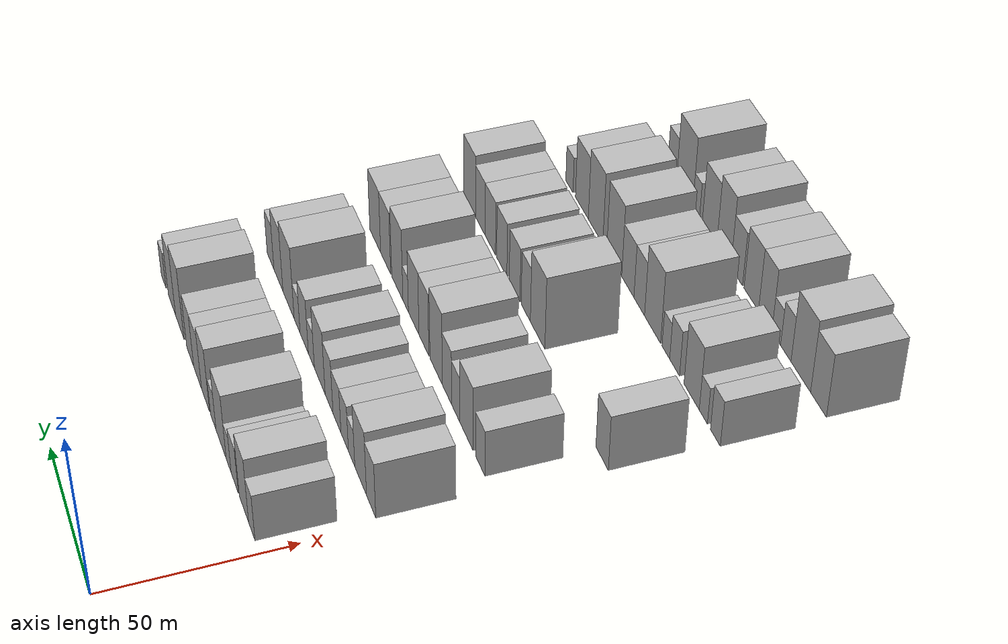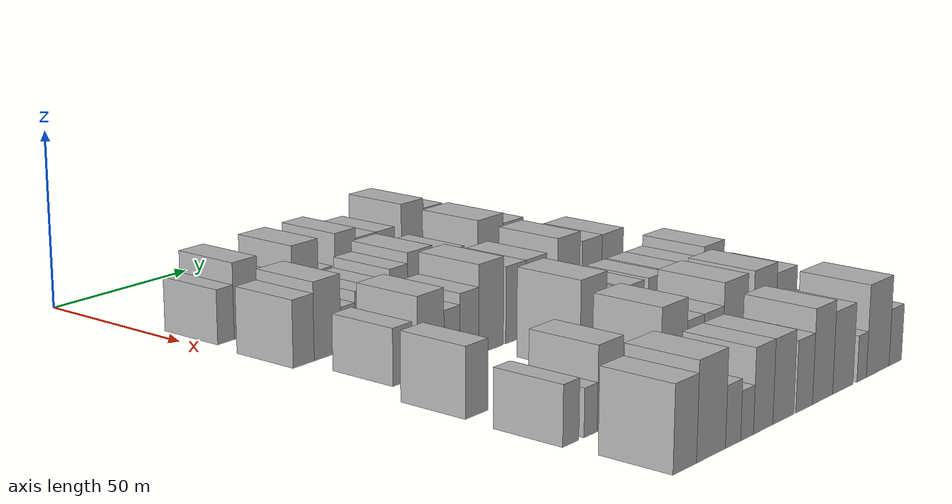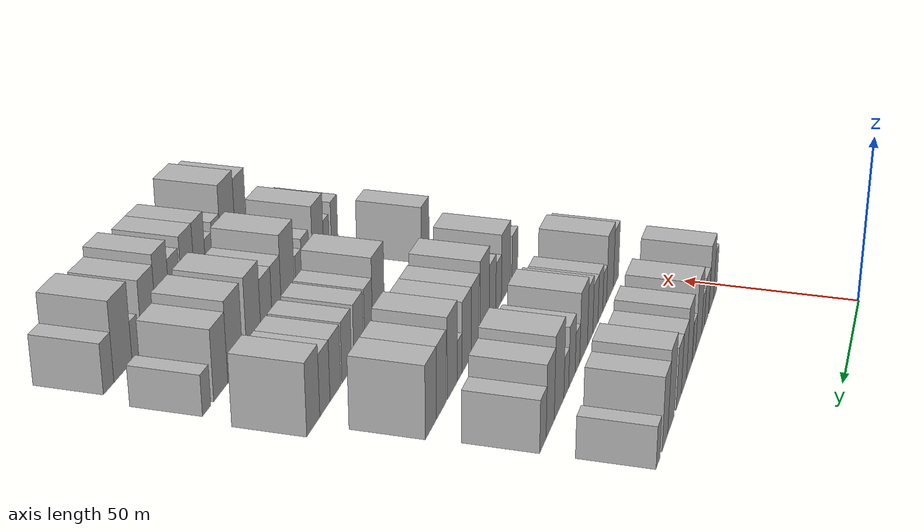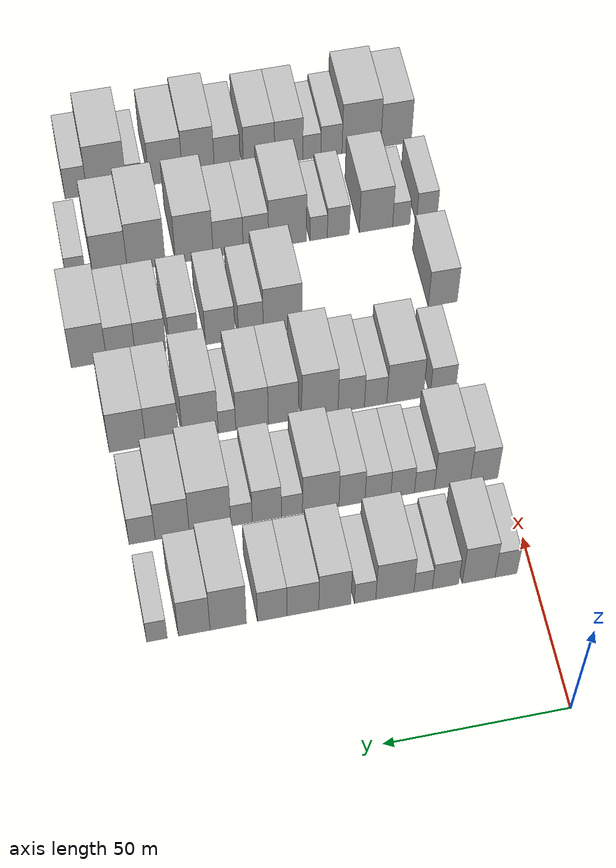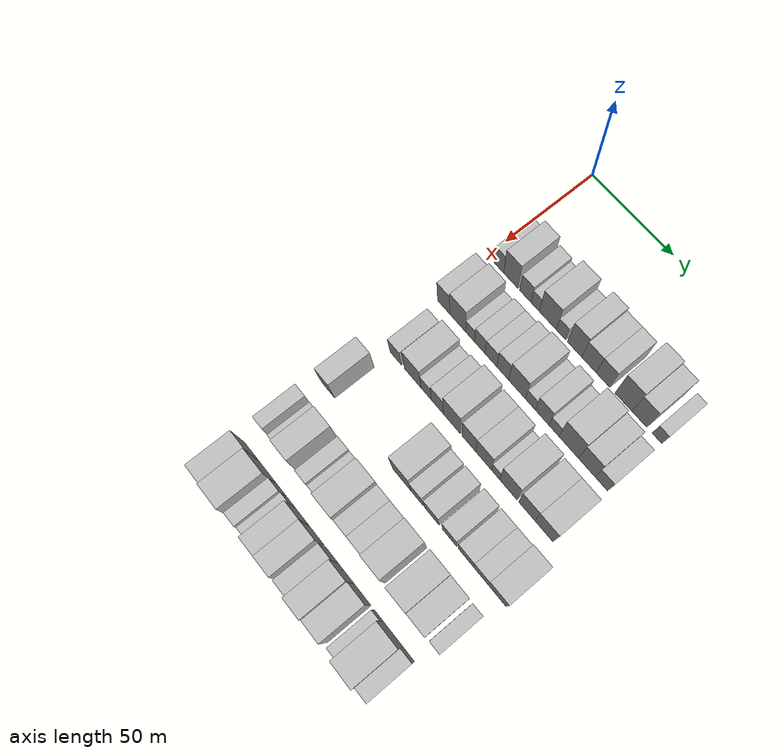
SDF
<sdf version="1.6">
 <world name="default">
  <model name="building_60">
   <static>1</static>
   <pose>50.0000 7.2807 0 0.000000 0.000000 0.000000</pose>
   <link name="link">
    <pose>0 0 7.50 0 0 0</pose>
    <collision name="collision"><geometry><box><size>20.0000 6.0589 15.0000</size></box></geometry></collision>
    <visual name="visual">
     <cast_shadows>0</cast_shadows>
     <geometry><box><size>20.0000 6.0589 15.0000</size></box></geometry>
     <material>
      <script>
       <uri>model://HANNAS_wall/materials/scripts</uri>
       <uri>model://HANNAS_wall/materials/textures</uri>
       <name>vrc/HANNAS_wall</name>
      </script>
     </material>
    </visual>
   </link>
  </model>
  <model name="building_61">
   <static>1</static>
   <pose>50.0000 14.8393 0 0.000000 0.000000 0.000000</pose>
   <link name="link">
    <pose>0 0 10.50 0 0 0</pose>
    <collision name="collision"><geometry><box><size>20.0000 9.0584 21.0000</size></box></geometry></collision>
    <visual name="visual">
     <cast_shadows>0</cast_shadows>
     <geometry><box><size>20.0000 9.0584 21.0000</size></box></geometry>
     <material>
      <script>
       <uri>model://HANNAS_wall/materials/scripts</uri>
       <uri>model://HANNAS_wall/materials/textures</uri>
       <name>vrc/HANNAS_wall</name>
      </script>
     </material>
    </visual>
   </link>
  </model>
  <model name="building_62">
   <static>1</static>
   <pose>50.0000 23.9872 0 0.000000 0.000000 0.000000</pose>
   <link name="link">
    <pose>0 0 7.50 0 0 0</pose>
    <collision name="collision"><geometry><box><size>20.0000 7.2373 15.0000</size></box></geometry></collision>
    <visual name="visual">
     <cast_shadows>0</cast_shadows>
     <geometry><box><size>20.0000 7.2373 15.0000</size></box></geometry>
     <material>
      <script>
       <uri>model://HANNAS_wall/materials/scripts</uri>
       <uri>model://HANNAS_wall/materials/textures</uri>
       <name>vrc/HANNAS_wall</name>
      </script>
     </material>
    </visual>
   </link>
  </model>
  <model name="building_63">
   <static>1</static>
   <pose>50.0000 30.1402 0 0.000000 0.000000 0.000000</pose>
   <link name="link">
    <pose>0 0 6.00 0 0 0</pose>
    <collision name="collision"><geometry><box><size>20.0000 5.0687 12.0000</size></box></geometry></collision>
    <visual name="visual">
     <cast_shadows>0</cast_shadows>
     <geometry><box><size>20.0000 5.0687 12.0000</size></box></geometry>
     <material>
      <script>
       <uri>model://HANNAS_wall/materials/scripts</uri>
       <uri>model://HANNAS_wall/materials/textures</uri>
       <name>vrc/HANNAS_wall</name>
      </script>
     </material>
    </visual>
   </link>
  </model>
  <model name="building_64">
   <static>1</static>
   <pose>50.0000 37.8830 0 0.000000 0.000000 0.000000</pose>
   <link name="link">
    <pose>0 0 10.50 0 0 0</pose>
    <collision name="collision"><geometry><box><size>20.0000 10.4169 21.0000</size></box></geometry></collision>
    <visual name="visual">
     <cast_shadows>0</cast_shadows>
     <geometry><box><size>20.0000 10.4169 21.0000</size></box></geometry>
     <material>
      <script>
       <uri>model://HANNAS_wall/materials/scripts</uri>
       <uri>model://HANNAS_wall/materials/textures</uri>
       <name>vrc/HANNAS_wall</name>
      </script>
     </material>
    </visual>
   </link>
  </model>
  <model name="building_65">
   <static>1</static>
   <pose>50.0000 45.9973 0 0.000000 0.000000 0.000000</pose>
   <link name="link">
    <pose>0 0 6.00 0 0 0</pose>
    <collision name="collision"><geometry><box><size>20.0000 5.8117 12.0000</size></box></geometry></collision>
    <visual name="visual">
     <cast_shadows>0</cast_shadows>
     <geometry><box><size>20.0000 5.8117 12.0000</size></box></geometry>
     <material>
      <script>
       <uri>model://HANNAS_wall/materials/scripts</uri>
       <uri>model://HANNAS_wall/materials/textures</uri>
       <name>vrc/HANNAS_wall</name>
      </script>
     </material>
    </visual>
   </link>
  </model>
  <model name="building_66">
   <static>1</static>
   <pose>50.0000 54.2521 0 0.000000 0.000000 0.000000</pose>
   <link name="link">
    <pose>0 0 10.50 0 0 0</pose>
    <collision name="collision"><geometry><box><size>20.0000 8.6979 21.0000</size></box></geometry></collision>
    <visual name="visual">
     <cast_shadows>0</cast_shadows>
     <geometry><box><size>20.0000 8.6979 21.0000</size></box></geometry>
     <material>
      <script>
       <uri>model://HANNAS_wall/materials/scripts</uri>
       <uri>model://HANNAS_wall/materials/textures</uri>
       <name>vrc/HANNAS_wall</name>
      </script>
     </material>
    </visual>
   </link>
  </model>
  <model name="building_67">
   <static>1</static>
   <pose>50.0000 62.9014 0 0.000000 0.000000 0.000000</pose>
   <link name="link">
    <pose>0 0 9.00 0 0 0</pose>
    <collision name="collision"><geometry><box><size>20.0000 8.6006 18.0000</size></box></geometry></collision>
    <visual name="visual">
     <cast_shadows>0</cast_shadows>
     <geometry><box><size>20.0000 8.6006 18.0000</size></box></geometry>
     <material>
      <script>
       <uri>model://HANNAS_wall/materials/scripts</uri>
       <uri>model://HANNAS_wall/materials/textures</uri>
       <name>vrc/HANNAS_wall</name>
      </script>
     </material>
    </visual>
   </link>
  </model>
  <model name="building_68">
   <static>1</static>
   <pose>50.0000 71.1912 0 0.000000 0.000000 0.000000</pose>
   <link name="link">
    <pose>0 0 9.00 0 0 0</pose>
    <collision name="collision"><geometry><box><size>20.0000 7.9790 18.0000</size></box></geometry></collision>
    <visual name="visual">
     <cast_shadows>0</cast_shadows>
     <geometry><box><size>20.0000 7.9790 18.0000</size></box></geometry>
     <material>
      <script>
       <uri>model://HANNAS_wall/materials/scripts</uri>
       <uri>model://HANNAS_wall/materials/textures</uri>
       <name>vrc/HANNAS_wall</name>
      </script>
     </material>
    </visual>
   </link>
  </model>
  <model name="building_69">
   <static>1</static>
   <pose>50.0000 83.0696 0 0.000000 0.000000 0.000000</pose>
   <link name="link">
    <pose>0 0 12.00 0 0 0</pose>
    <collision name="collision"><geometry><box><size>20.0000 9.7777 24.0000</size></box></geometry></collision>
    <visual name="visual">
     <cast_shadows>0</cast_shadows>
     <geometry><box><size>20.0000 9.7777 24.0000</size></box></geometry>
     <material>
      <script>
       <uri>model://HANNAS_wall/materials/scripts</uri>
       <uri>model://HANNAS_wall/materials/textures</uri>
       <name>vrc/HANNAS_wall</name>
      </script>
     </material>
    </visual>
   </link>
  </model>
  <model name="building_70">
   <static>1</static>
   <pose>50.0000 92.2091 0 0.000000 0.000000 0.000000</pose>
   <link name="link">
    <pose>0 0 10.50 0 0 0</pose>
    <collision name="collision"><geometry><box><size>20.0000 8.5013 21.0000</size></box></geometry></collision>
    <visual name="visual">
     <cast_shadows>0</cast_shadows>
     <geometry><box><size>20.0000 8.5013 21.0000</size></box></geometry>
     <material>
      <script>
       <uri>model://HANNAS_wall/materials/scripts</uri>
       <uri>model://HANNAS_wall/materials/textures</uri>
       <name>vrc/HANNAS_wall</name>
      </script>
     </material>
    </visual>
   </link>
  </model>
  <model name="building_71">
   <static>1</static>
   <pose>50.0000 102.2008 0 0.000000 0.000000 0.000000</pose>
   <link name="link">
    <pose>0 0 6.00 0 0 0</pose>
    <collision name="collision"><geometry><box><size>20.0000 5.4821 12.0000</size></box></geometry></collision>
    <visual name="visual">
     <cast_shadows>0</cast_shadows>
     <geometry><box><size>20.0000 5.4821 12.0000</size></box></geometry>
     <material>
      <script>
       <uri>model://HANNAS_wall/materials/scripts</uri>
       <uri>model://HANNAS_wall/materials/textures</uri>
       <name>vrc/HANNAS_wall</name>
      </script>
     </material>
    </visual>
   </link>
  </model>
  <model name="building_165">
   <static>1</static>
   <pose>79.0000 6.1927 0 0.000000 0.000000 0.000000</pose>
   <link name="link">
    <pose>0 0 9.00 0 0 0</pose>
    <collision name="collision"><geometry><box><size>20.0000 7.7935 18.0000</size></box></geometry></collision>
    <visual name="visual">
     <cast_shadows>0</cast_shadows>
     <geometry><box><size>20.0000 7.7935 18.0000</size></box></geometry>
     <material>
      <script>
       <uri>model://HANNAS_wall/materials/scripts</uri>
       <uri>model://HANNAS_wall/materials/textures</uri>
       <name>vrc/HANNAS_wall</name>
      </script>
     </material>
    </visual>
   </link>
  </model>
  <model name="building_166">
   <static>1</static>
   <pose>79.0000 15.1392 0 0.000000 0.000000 0.000000</pose>
   <link name="link">
    <pose>0 0 10.50 0 0 0</pose>
    <collision name="collision"><geometry><box><size>20.0000 10.0993 21.0000</size></box></geometry></collision>
    <visual name="visual">
     <cast_shadows>0</cast_shadows>
     <geometry><box><size>20.0000 10.0993 21.0000</size></box></geometry>
     <material>
      <script>
       <uri>model://HANNAS_wall/materials/scripts</uri>
       <uri>model://HANNAS_wall/materials/textures</uri>
       <name>vrc/HANNAS_wall</name>
      </script>
     </material>
    </visual>
   </link>
  </model>
  <model name="building_167">
   <static>1</static>
   <pose>79.0000 22.9930 0 0.000000 0.000000 0.000000</pose>
   <link name="link">
    <pose>0 0 6.00 0 0 0</pose>
    <collision name="collision"><geometry><box><size>20.0000 5.6085 12.0000</size></box></geometry></collision>
    <visual name="visual">
     <cast_shadows>0</cast_shadows>
     <geometry><box><size>20.0000 5.6085 12.0000</size></box></geometry>
     <material>
      <script>
       <uri>model://HANNAS_wall/materials/scripts</uri>
       <uri>model://HANNAS_wall/materials/textures</uri>
       <name>vrc/HANNAS_wall</name>
      </script>
     </material>
    </visual>
   </link>
  </model>
  <model name="building_168">
   <static>1</static>
   <pose>79.0000 29.1366 0 0.000000 0.000000 0.000000</pose>
   <link name="link">
    <pose>0 0 7.50 0 0 0</pose>
    <collision name="collision"><geometry><box><size>20.0000 6.6786 15.0000</size></box></geometry></collision>
    <visual name="visual">
     <cast_shadows>0</cast_shadows>
     <geometry><box><size>20.0000 6.6786 15.0000</size></box></geometry>
     <material>
      <script>
       <uri>model://HANNAS_wall/materials/scripts</uri>
       <uri>model://HANNAS_wall/materials/textures</uri>
       <name>vrc/HANNAS_wall</name>
      </script>
     </material>
    </visual>
   </link>
  </model>
  <model name="building_169">
   <static>1</static>
   <pose>79.0000 36.0788 0 0.000000 0.000000 0.000000</pose>
   <link name="link">
    <pose>0 0 7.50 0 0 0</pose>
    <collision name="collision"><geometry><box><size>20.0000 7.2059 15.0000</size></box></geometry></collision>
    <visual name="visual">
     <cast_shadows>0</cast_shadows>
     <geometry><box><size>20.0000 7.2059 15.0000</size></box></geometry>
     <material>
      <script>
       <uri>model://HANNAS_wall/materials/scripts</uri>
       <uri>model://HANNAS_wall/materials/textures</uri>
       <name>vrc/HANNAS_wall</name>
      </script>
     </material>
    </visual>
   </link>
  </model>
  <model name="building_170">
   <static>1</static>
   <pose>79.0000 43.3223 0 0.000000 0.000000 0.000000</pose>
   <link name="link">
    <pose>0 0 9.00 0 0 0</pose>
    <collision name="collision"><geometry><box><size>20.0000 7.2812 18.0000</size></box></geometry></collision>
    <visual name="visual">
     <cast_shadows>0</cast_shadows>
     <geometry><box><size>20.0000 7.2812 18.0000</size></box></geometry>
     <material>
      <script>
       <uri>model://HANNAS_wall/materials/scripts</uri>
       <uri>model://HANNAS_wall/materials/textures</uri>
       <name>vrc/HANNAS_wall</name>
      </script>
     </material>
    </visual>
   </link>
  </model>
  <model name="building_171">
   <static>1</static>
   <pose>79.0000 52.0455 0 0.000000 0.000000 0.000000</pose>
   <link name="link">
    <pose>0 0 10.50 0 0 0</pose>
    <collision name="collision"><geometry><box><size>20.0000 10.1652 21.0000</size></box></geometry></collision>
    <visual name="visual">
     <cast_shadows>0</cast_shadows>
     <geometry><box><size>20.0000 10.1652 21.0000</size></box></geometry>
     <material>
      <script>
       <uri>model://HANNAS_wall/materials/scripts</uri>
       <uri>model://HANNAS_wall/materials/textures</uri>
       <name>vrc/HANNAS_wall</name>
      </script>
     </material>
    </visual>
   </link>
  </model>
  <model name="building_172">
   <static>1</static>
   <pose>79.0000 60.0529 0 0.000000 0.000000 0.000000</pose>
   <link name="link">
    <pose>0 0 6.00 0 0 0</pose>
    <collision name="collision"><geometry><box><size>20.0000 5.8496 12.0000</size></box></geometry></collision>
    <visual name="visual">
     <cast_shadows>0</cast_shadows>
     <geometry><box><size>20.0000 5.8496 12.0000</size></box></geometry>
     <material>
      <script>
       <uri>model://HANNAS_wall/materials/scripts</uri>
       <uri>model://HANNAS_wall/materials/textures</uri>
       <name>vrc/HANNAS_wall</name>
      </script>
     </material>
    </visual>
   </link>
  </model>
  <model name="building_173">
   <static>1</static>
   <pose>79.0000 67.0197 0 0.000000 0.000000 0.000000</pose>
   <link name="link">
    <pose>0 0 9.00 0 0 0</pose>
    <collision name="collision"><geometry><box><size>20.0000 8.0840 18.0000</size></box></geometry></collision>
    <visual name="visual">
     <cast_shadows>0</cast_shadows>
     <geometry><box><size>20.0000 8.0840 18.0000</size></box></geometry>
     <material>
      <script>
       <uri>model://HANNAS_wall/materials/scripts</uri>
       <uri>model://HANNAS_wall/materials/textures</uri>
       <name>vrc/HANNAS_wall</name>
      </script>
     </material>
    </visual>
   </link>
  </model>
  <model name="building_174">
   <static>1</static>
   <pose>79.0000 74.0165 0 0.000000 0.000000 0.000000</pose>
   <link name="link">
    <pose>0 0 6.00 0 0 0</pose>
    <collision name="collision"><geometry><box><size>20.0000 5.9096 12.0000</size></box></geometry></collision>
    <visual name="visual">
     <cast_shadows>0</cast_shadows>
     <geometry><box><size>20.0000 5.9096 12.0000</size></box></geometry>
     <material>
      <script>
       <uri>model://HANNAS_wall/materials/scripts</uri>
       <uri>model://HANNAS_wall/materials/textures</uri>
       <name>vrc/HANNAS_wall</name>
      </script>
     </material>
    </visual>
   </link>
  </model>
  <model name="building_175">
   <static>1</static>
   <pose>79.0000 82.6772 0 0.000000 0.000000 0.000000</pose>
   <link name="link">
    <pose>0 0 12.00 0 0 0</pose>
    <collision name="collision"><geometry><box><size>20.0000 11.4118 24.0000</size></box></geometry></collision>
    <visual name="visual">
     <cast_shadows>0</cast_shadows>
     <geometry><box><size>20.0000 11.4118 24.0000</size></box></geometry>
     <material>
      <script>
       <uri>model://HANNAS_wall/materials/scripts</uri>
       <uri>model://HANNAS_wall/materials/textures</uri>
       <name>vrc/HANNAS_wall</name>
      </script>
     </material>
    </visual>
   </link>
  </model>
  <model name="building_176">
   <static>1</static>
   <pose>79.0000 93.0775 0 0.000000 0.000000 0.000000</pose>
   <link name="link">
    <pose>0 0 10.50 0 0 0</pose>
    <collision name="collision"><geometry><box><size>20.0000 9.3887 21.0000</size></box></geometry></collision>
    <visual name="visual">
     <cast_shadows>0</cast_shadows>
     <geometry><box><size>20.0000 9.3887 21.0000</size></box></geometry>
     <material>
      <script>
       <uri>model://HANNAS_wall/materials/scripts</uri>
       <uri>model://HANNAS_wall/materials/textures</uri>
       <name>vrc/HANNAS_wall</name>
      </script>
     </material>
    </visual>
   </link>
  </model>
  <model name="building_177">
   <static>1</static>
   <pose>79.0000 101.3603 0 0.000000 0.000000 0.000000</pose>
   <link name="link">
    <pose>0 0 7.50 0 0 0</pose>
    <collision name="collision"><geometry><box><size>20.0000 7.1768 15.0000</size></box></geometry></collision>
    <visual name="visual">
     <cast_shadows>0</cast_shadows>
     <geometry><box><size>20.0000 7.1768 15.0000</size></box></geometry>
     <material>
      <script>
       <uri>model://HANNAS_wall/materials/scripts</uri>
       <uri>model://HANNAS_wall/materials/textures</uri>
       <name>vrc/HANNAS_wall</name>
      </script>
     </material>
    </visual>
   </link>
  </model>
  <model name="building_274">
   <static>1</static>
   <pose>108.0000 10.9206 0 0.000000 0.000000 0.000000</pose>
   <link name="link">
    <pose>0 0 7.50 0 0 0</pose>
    <collision name="collision"><geometry><box><size>20.0000 7.2757 15.0000</size></box></geometry></collision>
    <visual name="visual">
     <cast_shadows>0</cast_shadows>
     <geometry><box><size>20.0000 7.2757 15.0000</size></box></geometry>
     <material>
      <script>
       <uri>model://HANNAS_wall/materials/scripts</uri>
       <uri>model://HANNAS_wall/materials/textures</uri>
       <name>vrc/HANNAS_wall</name>
      </script>
     </material>
    </visual>
   </link>
  </model>
  <model name="building_275">
   <static>1</static>
   <pose>108.0000 21.8003 0 0.000000 0.000000 0.000000</pose>
   <link name="link">
    <pose>0 0 10.50 0 0 0</pose>
    <collision name="collision"><geometry><box><size>20.0000 10.4837 21.0000</size></box></geometry></collision>
    <visual name="visual">
     <cast_shadows>0</cast_shadows>
     <geometry><box><size>20.0000 10.4837 21.0000</size></box></geometry>
     <material>
      <script>
       <uri>model://HANNAS_wall/materials/scripts</uri>
       <uri>model://HANNAS_wall/materials/textures</uri>
       <name>vrc/HANNAS_wall</name>
      </script>
     </material>
    </visual>
   </link>
  </model>
  <model name="building_276">
   <static>1</static>
   <pose>108.0000 30.2634 0 0.000000 0.000000 0.000000</pose>
   <link name="link">
    <pose>0 0 7.50 0 0 0</pose>
    <collision name="collision"><geometry><box><size>20.0000 6.4425 15.0000</size></box></geometry></collision>
    <visual name="visual">
     <cast_shadows>0</cast_shadows>
     <geometry><box><size>20.0000 6.4425 15.0000</size></box></geometry>
     <material>
      <script>
       <uri>model://HANNAS_wall/materials/scripts</uri>
       <uri>model://HANNAS_wall/materials/textures</uri>
       <name>vrc/HANNAS_wall</name>
      </script>
     </material>
    </visual>
   </link>
  </model>
  <model name="building_277">
   <static>1</static>
   <pose>108.0000 37.2650 0 0.000000 0.000000 0.000000</pose>
   <link name="link">
    <pose>0 0 9.00 0 0 0</pose>
    <collision name="collision"><geometry><box><size>20.0000 7.5607 18.0000</size></box></geometry></collision>
    <visual name="visual">
     <cast_shadows>0</cast_shadows>
     <geometry><box><size>20.0000 7.5607 18.0000</size></box></geometry>
     <material>
      <script>
       <uri>model://HANNAS_wall/materials/scripts</uri>
       <uri>model://HANNAS_wall/materials/textures</uri>
       <name>vrc/HANNAS_wall</name>
      </script>
     </material>
    </visual>
   </link>
  </model>
  <model name="building_278">
   <static>1</static>
   <pose>108.0000 46.2348 0 0.000000 0.000000 0.000000</pose>
   <link name="link">
    <pose>0 0 12.00 0 0 0</pose>
    <collision name="collision"><geometry><box><size>20.0000 10.3787 24.0000</size></box></geometry></collision>
    <visual name="visual">
     <cast_shadows>0</cast_shadows>
     <geometry><box><size>20.0000 10.3787 24.0000</size></box></geometry>
     <material>
      <script>
       <uri>model://HANNAS_wall/materials/scripts</uri>
       <uri>model://HANNAS_wall/materials/textures</uri>
       <name>vrc/HANNAS_wall</name>
      </script>
     </material>
    </visual>
   </link>
  </model>
  <model name="building_279">
   <static>1</static>
   <pose>108.0000 56.6740 0 0.000000 0.000000 0.000000</pose>
   <link name="link">
    <pose>0 0 10.50 0 0 0</pose>
    <collision name="collision"><geometry><box><size>20.0000 8.4998 21.0000</size></box></geometry></collision>
    <visual name="visual">
     <cast_shadows>0</cast_shadows>
     <geometry><box><size>20.0000 8.4998 21.0000</size></box></geometry>
     <material>
      <script>
       <uri>model://HANNAS_wall/materials/scripts</uri>
       <uri>model://HANNAS_wall/materials/textures</uri>
       <name>vrc/HANNAS_wall</name>
      </script>
     </material>
    </visual>
   </link>
  </model>
  <model name="building_280">
   <static>1</static>
   <pose>108.0000 65.5536 0 0.000000 0.000000 0.000000</pose>
   <link name="link">
    <pose>0 0 10.50 0 0 0</pose>
    <collision name="collision"><geometry><box><size>20.0000 9.2593 21.0000</size></box></geometry></collision>
    <visual name="visual">
     <cast_shadows>0</cast_shadows>
     <geometry><box><size>20.0000 9.2593 21.0000</size></box></geometry>
     <material>
      <script>
       <uri>model://HANNAS_wall/materials/scripts</uri>
       <uri>model://HANNAS_wall/materials/textures</uri>
       <name>vrc/HANNAS_wall</name>
      </script>
     </material>
    </visual>
   </link>
  </model>
  <model name="building_281">
   <static>1</static>
   <pose>108.0000 72.6393 0 0.000000 0.000000 0.000000</pose>
   <link name="link">
    <pose>0 0 6.00 0 0 0</pose>
    <collision name="collision"><geometry><box><size>20.0000 4.9122 12.0000</size></box></geometry></collision>
    <visual name="visual">
     <cast_shadows>0</cast_shadows>
     <geometry><box><size>20.0000 4.9122 12.0000</size></box></geometry>
     <material>
      <script>
       <uri>model://HANNAS_wall/materials/scripts</uri>
       <uri>model://HANNAS_wall/materials/textures</uri>
       <name>vrc/HANNAS_wall</name>
      </script>
     </material>
    </visual>
   </link>
  </model>
  <model name="building_282">
   <static>1</static>
   <pose>108.0000 80.1490 0 0.000000 0.000000 0.000000</pose>
   <link name="link">
    <pose>0 0 12.00 0 0 0</pose>
    <collision name="collision"><geometry><box><size>20.0000 10.1071 24.0000</size></box></geometry></collision>
    <visual name="visual">
     <cast_shadows>0</cast_shadows>
     <geometry><box><size>20.0000 10.1071 24.0000</size></box></geometry>
     <material>
      <script>
       <uri>model://HANNAS_wall/materials/scripts</uri>
       <uri>model://HANNAS_wall/materials/textures</uri>
       <name>vrc/HANNAS_wall</name>
      </script>
     </material>
    </visual>
   </link>
  </model>
  <model name="building_283">
   <static>1</static>
   <pose>108.0000 90.8758 0 0.000000 0.000000 0.000000</pose>
   <link name="link">
    <pose>0 0 10.50 0 0 0</pose>
    <collision name="collision"><geometry><box><size>20.0000 9.3465 21.0000</size></box></geometry></collision>
    <visual name="visual">
     <cast_shadows>0</cast_shadows>
     <geometry><box><size>20.0000 9.3465 21.0000</size></box></geometry>
     <material>
      <script>
       <uri>model://HANNAS_wall/materials/scripts</uri>
       <uri>model://HANNAS_wall/materials/textures</uri>
       <name>vrc/HANNAS_wall</name>
      </script>
     </material>
    </visual>
   </link>
  </model>
  <model name="building_284">
   <static>1</static>
   <pose>108.0000 100.6800 0 0.000000 0.000000 0.000000</pose>
   <link name="link">
    <pose>0 0 10.50 0 0 0</pose>
    <collision name="collision"><geometry><box><size>20.0000 10.2620 21.0000</size></box></geometry></collision>
    <visual name="visual">
     <cast_shadows>0</cast_shadows>
     <geometry><box><size>20.0000 10.2620 21.0000</size></box></geometry>
     <material>
      <script>
       <uri>model://HANNAS_wall/materials/scripts</uri>
       <uri>model://HANNAS_wall/materials/textures</uri>
       <name>vrc/HANNAS_wall</name>
      </script>
     </material>
    </visual>
   </link>
  </model>
  <model name="building_391">
   <static>1</static>
   <pose>137.0000 4.0208 0 0.000000 0.000000 0.000000</pose>
   <link name="link">
    <pose>0 0 9.00 0 0 0</pose>
    <collision name="collision"><geometry><box><size>20.0000 8.5534 18.0000</size></box></geometry></collision>
    <visual name="visual">
     <cast_shadows>0</cast_shadows>
     <geometry><box><size>20.0000 8.5534 18.0000</size></box></geometry>
     <material>
      <script>
       <uri>model://HANNAS_wall/materials/scripts</uri>
       <uri>model://HANNAS_wall/materials/textures</uri>
       <name>vrc/HANNAS_wall</name>
      </script>
     </material>
    </visual>
   </link>
  </model>
  <model name="building_392">
   <static>1</static>
   <pose>137.0000 51.1116 0 0.000000 0.000000 0.000000</pose>
   <link name="link">
    <pose>0 0 12.00 0 0 0</pose>
    <collision name="collision"><geometry><box><size>20.0000 11.2094 24.0000</size></box></geometry></collision>
    <visual name="visual">
     <cast_shadows>0</cast_shadows>
     <geometry><box><size>20.0000 11.2094 24.0000</size></box></geometry>
     <material>
      <script>
       <uri>model://HANNAS_wall/materials/scripts</uri>
       <uri>model://HANNAS_wall/materials/textures</uri>
       <name>vrc/HANNAS_wall</name>
      </script>
     </material>
    </visual>
   </link>
  </model>
  <model name="building_393">
   <static>1</static>
   <pose>137.0000 60.3166 0 0.000000 0.000000 0.000000</pose>
   <link name="link">
    <pose>0 0 9.00 0 0 0</pose>
    <collision name="collision"><geometry><box><size>20.0000 7.2005 18.0000</size></box></geometry></collision>
    <visual name="visual">
     <cast_shadows>0</cast_shadows>
     <geometry><box><size>20.0000 7.2005 18.0000</size></box></geometry>
     <material>
      <script>
       <uri>model://HANNAS_wall/materials/scripts</uri>
       <uri>model://HANNAS_wall/materials/textures</uri>
       <name>vrc/HANNAS_wall</name>
      </script>
     </material>
    </visual>
   </link>
  </model>
  <model name="building_394">
   <static>1</static>
   <pose>137.0000 69.2212 0 0.000000 0.000000 0.000000</pose>
   <link name="link">
    <pose>0 0 9.00 0 0 0</pose>
    <collision name="collision"><geometry><box><size>20.0000 8.6088 18.0000</size></box></geometry></collision>
    <visual name="visual">
     <cast_shadows>0</cast_shadows>
     <geometry><box><size>20.0000 8.6088 18.0000</size></box></geometry>
     <material>
      <script>
       <uri>model://HANNAS_wall/materials/scripts</uri>
       <uri>model://HANNAS_wall/materials/textures</uri>
       <name>vrc/HANNAS_wall</name>
      </script>
     </material>
    </visual>
   </link>
  </model>
  <model name="building_395">
   <static>1</static>
   <pose>137.0000 79.7200 0 0.000000 0.000000 0.000000</pose>
   <link name="link">
    <pose>0 0 9.00 0 0 0</pose>
    <collision name="collision"><geometry><box><size>20.0000 8.3886 18.0000</size></box></geometry></collision>
    <visual name="visual">
     <cast_shadows>0</cast_shadows>
     <geometry><box><size>20.0000 8.3886 18.0000</size></box></geometry>
     <material>
      <script>
       <uri>model://HANNAS_wall/materials/scripts</uri>
       <uri>model://HANNAS_wall/materials/textures</uri>
       <name>vrc/HANNAS_wall</name>
      </script>
     </material>
    </visual>
   </link>
  </model>
  <model name="building_396">
   <static>1</static>
   <pose>137.0000 89.3250 0 0.000000 0.000000 0.000000</pose>
   <link name="link">
    <pose>0 0 9.00 0 0 0</pose>
    <collision name="collision"><geometry><box><size>20.0000 8.8214 18.0000</size></box></geometry></collision>
    <visual name="visual">
     <cast_shadows>0</cast_shadows>
     <geometry><box><size>20.0000 8.8214 18.0000</size></box></geometry>
     <material>
      <script>
       <uri>model://HANNAS_wall/materials/scripts</uri>
       <uri>model://HANNAS_wall/materials/textures</uri>
       <name>vrc/HANNAS_wall</name>
      </script>
     </material>
    </visual>
   </link>
  </model>
  <model name="building_397">
   <static>1</static>
   <pose>137.0000 97.8682 0 0.000000 0.000000 0.000000</pose>
   <link name="link">
    <pose>0 0 9.00 0 0 0</pose>
    <collision name="collision"><geometry><box><size>20.0000 8.2650 18.0000</size></box></geometry></collision>
    <visual name="visual">
     <cast_shadows>0</cast_shadows>
     <geometry><box><size>20.0000 8.2650 18.0000</size></box></geometry>
     <material>
      <script>
       <uri>model://HANNAS_wall/materials/scripts</uri>
       <uri>model://HANNAS_wall/materials/textures</uri>
       <name>vrc/HANNAS_wall</name>
      </script>
     </material>
    </visual>
   </link>
  </model>
  <model name="building_398">
   <static>1</static>
   <pose>137.0000 107.1067 0 0.000000 0.000000 0.000000</pose>
   <link name="link">
    <pose>0 0 10.50 0 0 0</pose>
    <collision name="collision"><geometry><box><size>20.0000 10.2121 21.0000</size></box></geometry></collision>
    <visual name="visual">
     <cast_shadows>0</cast_shadows>
     <geometry><box><size>20.0000 10.2121 21.0000</size></box></geometry>
     <material>
      <script>
       <uri>model://HANNAS_wall/materials/scripts</uri>
       <uri>model://HANNAS_wall/materials/textures</uri>
       <name>vrc/HANNAS_wall</name>
      </script>
     </material>
    </visual>
   </link>
  </model>
  <model name="building_502">
   <static>1</static>
   <pose>166.0000 1.9831 0 0.000000 0.000000 0.000000</pose>
   <link name="link">
    <pose>0 0 7.50 0 0 0</pose>
    <collision name="collision"><geometry><box><size>20.0000 6.2096 15.0000</size></box></geometry></collision>
    <visual name="visual">
     <cast_shadows>0</cast_shadows>
     <geometry><box><size>20.0000 6.2096 15.0000</size></box></geometry>
     <material>
      <script>
       <uri>model://HANNAS_wall/materials/scripts</uri>
       <uri>model://HANNAS_wall/materials/textures</uri>
       <name>vrc/HANNAS_wall</name>
      </script>
     </material>
    </visual>
   </link>
  </model>
  <model name="building_503">
   <static>1</static>
   <pose>166.0000 9.6900 0 0.000000 0.000000 0.000000</pose>
   <link name="link">
    <pose>0 0 6.00 0 0 0</pose>
    <collision name="collision"><geometry><box><size>20.0000 5.2043 12.0000</size></box></geometry></collision>
    <visual name="visual">
     <cast_shadows>0</cast_shadows>
     <geometry><box><size>20.0000 5.2043 12.0000</size></box></geometry>
     <material>
      <script>
       <uri>model://HANNAS_wall/materials/scripts</uri>
       <uri>model://HANNAS_wall/materials/textures</uri>
       <name>vrc/HANNAS_wall</name>
      </script>
     </material>
    </visual>
   </link>
  </model>
  <model name="building_504">
   <static>1</static>
   <pose>166.0000 17.3154 0 0.000000 0.000000 0.000000</pose>
   <link name="link">
    <pose>0 0 10.50 0 0 0</pose>
    <collision name="collision"><geometry><box><size>20.0000 10.0464 21.0000</size></box></geometry></collision>
    <visual name="visual">
     <cast_shadows>0</cast_shadows>
     <geometry><box><size>20.0000 10.0464 21.0000</size></box></geometry>
     <material>
      <script>
       <uri>model://HANNAS_wall/materials/scripts</uri>
       <uri>model://HANNAS_wall/materials/textures</uri>
       <name>vrc/HANNAS_wall</name>
      </script>
     </material>
    </visual>
   </link>
  </model>
  <model name="building_505">
   <static>1</static>
   <pose>166.0000 28.6568 0 0.000000 0.000000 0.000000</pose>
   <link name="link">
    <pose>0 0 7.50 0 0 0</pose>
    <collision name="collision"><geometry><box><size>20.0000 6.6364 15.0000</size></box></geometry></collision>
    <visual name="visual">
     <cast_shadows>0</cast_shadows>
     <geometry><box><size>20.0000 6.6364 15.0000</size></box></geometry>
     <material>
      <script>
       <uri>model://HANNAS_wall/materials/scripts</uri>
       <uri>model://HANNAS_wall/materials/textures</uri>
       <name>vrc/HANNAS_wall</name>
      </script>
     </material>
    </visual>
   </link>
  </model>
  <model name="building_506">
   <static>1</static>
   <pose>166.0000 34.5924 0 0.000000 0.000000 0.000000</pose>
   <link name="link">
    <pose>0 0 6.00 0 0 0</pose>
    <collision name="collision"><geometry><box><size>20.0000 5.2347 12.0000</size></box></geometry></collision>
    <visual name="visual">
     <cast_shadows>0</cast_shadows>
     <geometry><box><size>20.0000 5.2347 12.0000</size></box></geometry>
     <material>
      <script>
       <uri>model://HANNAS_wall/materials/scripts</uri>
       <uri>model://HANNAS_wall/materials/textures</uri>
       <name>vrc/HANNAS_wall</name>
      </script>
     </material>
    </visual>
   </link>
  </model>
  <model name="building_507">
   <static>1</static>
   <pose>166.0000 43.8521 0 0.000000 0.000000 0.000000</pose>
   <link name="link">
    <pose>0 0 12.00 0 0 0</pose>
    <collision name="collision"><geometry><box><size>20.0000 11.2848 24.0000</size></box></geometry></collision>
    <visual name="visual">
     <cast_shadows>0</cast_shadows>
     <geometry><box><size>20.0000 11.2848 24.0000</size></box></geometry>
     <material>
      <script>
       <uri>model://HANNAS_wall/materials/scripts</uri>
       <uri>model://HANNAS_wall/materials/textures</uri>
       <name>vrc/HANNAS_wall</name>
      </script>
     </material>
    </visual>
   </link>
  </model>
  <model name="building_508">
   <static>1</static>
   <pose>166.0000 53.2860 0 0.000000 0.000000 0.000000</pose>
   <link name="link">
    <pose>0 0 9.00 0 0 0</pose>
    <collision name="collision"><geometry><box><size>20.0000 7.5829 18.0000</size></box></geometry></collision>
    <visual name="visual">
     <cast_shadows>0</cast_shadows>
     <geometry><box><size>20.0000 7.5829 18.0000</size></box></geometry>
     <material>
      <script>
       <uri>model://HANNAS_wall/materials/scripts</uri>
       <uri>model://HANNAS_wall/materials/textures</uri>
       <name>vrc/HANNAS_wall</name>
      </script>
     </material>
    </visual>
   </link>
  </model>
  <model name="building_509">
   <static>1</static>
   <pose>166.0000 61.5480 0 0.000000 0.000000 0.000000</pose>
   <link name="link">
    <pose>0 0 9.00 0 0 0</pose>
    <collision name="collision"><geometry><box><size>20.0000 8.9412 18.0000</size></box></geometry></collision>
    <visual name="visual">
     <cast_shadows>0</cast_shadows>
     <geometry><box><size>20.0000 8.9412 18.0000</size></box></geometry>
     <material>
      <script>
       <uri>model://HANNAS_wall/materials/scripts</uri>
       <uri>model://HANNAS_wall/materials/textures</uri>
       <name>vrc/HANNAS_wall</name>
      </script>
     </material>
    </visual>
   </link>
  </model>
  <model name="building_510">
   <static>1</static>
   <pose>166.0000 71.5981 0 0.000000 0.000000 0.000000</pose>
   <link name="link">
    <pose>0 0 12.00 0 0 0</pose>
    <collision name="collision"><geometry><box><size>20.0000 11.1589 24.0000</size></box></geometry></collision>
    <visual name="visual">
     <cast_shadows>0</cast_shadows>
     <geometry><box><size>20.0000 11.1589 24.0000</size></box></geometry>
     <material>
      <script>
       <uri>model://HANNAS_wall/materials/scripts</uri>
       <uri>model://HANNAS_wall/materials/textures</uri>
       <name>vrc/HANNAS_wall</name>
      </script>
     </material>
    </visual>
   </link>
  </model>
  <model name="building_511">
   <static>1</static>
   <pose>166.0000 85.7743 0 0.000000 0.000000 0.000000</pose>
   <link name="link">
    <pose>0 0 12.00 0 0 0</pose>
    <collision name="collision"><geometry><box><size>20.0000 11.1934 24.0000</size></box></geometry></collision>
    <visual name="visual">
     <cast_shadows>0</cast_shadows>
     <geometry><box><size>20.0000 11.1934 24.0000</size></box></geometry>
     <material>
      <script>
       <uri>model://HANNAS_wall/materials/scripts</uri>
       <uri>model://HANNAS_wall/materials/textures</uri>
       <name>vrc/HANNAS_wall</name>
      </script>
     </material>
    </visual>
   </link>
  </model>
  <model name="building_512">
   <static>1</static>
   <pose>166.0000 96.4604 0 0.000000 0.000000 0.000000</pose>
   <link name="link">
    <pose>0 0 10.50 0 0 0</pose>
    <collision name="collision"><geometry><box><size>20.0000 10.1789 21.0000</size></box></geometry></collision>
    <visual name="visual">
     <cast_shadows>0</cast_shadows>
     <geometry><box><size>20.0000 10.1789 21.0000</size></box></geometry>
     <material>
      <script>
       <uri>model://HANNAS_wall/materials/scripts</uri>
       <uri>model://HANNAS_wall/materials/textures</uri>
       <name>vrc/HANNAS_wall</name>
      </script>
     </material>
    </visual>
   </link>
  </model>
  <model name="building_513">
   <static>1</static>
   <pose>166.0000 106.4442 0 0.000000 0.000000 0.000000</pose>
   <link name="link">
    <pose>0 0 6.00 0 0 0</pose>
    <collision name="collision"><geometry><box><size>20.0000 5.7887 12.0000</size></box></geometry></collision>
    <visual name="visual">
     <cast_shadows>0</cast_shadows>
     <geometry><box><size>20.0000 5.7887 12.0000</size></box></geometry>
     <material>
      <script>
       <uri>model://HANNAS_wall/materials/scripts</uri>
       <uri>model://HANNAS_wall/materials/textures</uri>
       <name>vrc/HANNAS_wall</name>
      </script>
     </material>
    </visual>
   </link>
  </model>
  <model name="building_623">
   <static>1</static>
   <pose>195.0000 4.7143 0 0.000000 0.000000 0.000000</pose>
   <link name="link">
    <pose>0 0 10.50 0 0 0</pose>
    <collision name="collision"><geometry><box><size>20.0000 9.4198 21.0000</size></box></geometry></collision>
    <visual name="visual">
     <cast_shadows>0</cast_shadows>
     <geometry><box><size>20.0000 9.4198 21.0000</size></box></geometry>
     <material>
      <script>
       <uri>model://HANNAS_wall/materials/scripts</uri>
       <uri>model://HANNAS_wall/materials/textures</uri>
       <name>vrc/HANNAS_wall</name>
      </script>
     </material>
    </visual>
   </link>
  </model>
  <model name="building_624">
   <static>1</static>
   <pose>195.0000 15.3926 0 0.000000 0.000000 0.000000</pose>
   <link name="link">
    <pose>0 0 12.00 0 0 0</pose>
    <collision name="collision"><geometry><box><size>20.0000 11.9369 24.0000</size></box></geometry></collision>
    <visual name="visual">
     <cast_shadows>0</cast_shadows>
     <geometry><box><size>20.0000 11.9369 24.0000</size></box></geometry>
     <material>
      <script>
       <uri>model://HANNAS_wall/materials/scripts</uri>
       <uri>model://HANNAS_wall/materials/textures</uri>
       <name>vrc/HANNAS_wall</name>
      </script>
     </material>
    </visual>
   </link>
  </model>
  <model name="building_625">
   <static>1</static>
   <pose>195.0000 24.6076 0 0.000000 0.000000 0.000000</pose>
   <link name="link">
    <pose>0 0 7.50 0 0 0</pose>
    <collision name="collision"><geometry><box><size>20.0000 6.4930 15.0000</size></box></geometry></collision>
    <visual name="visual">
     <cast_shadows>0</cast_shadows>
     <geometry><box><size>20.0000 6.4930 15.0000</size></box></geometry>
     <material>
      <script>
       <uri>model://HANNAS_wall/materials/scripts</uri>
       <uri>model://HANNAS_wall/materials/textures</uri>
       <name>vrc/HANNAS_wall</name>
      </script>
     </material>
    </visual>
   </link>
  </model>
  <model name="building_626">
   <static>1</static>
   <pose>195.0000 30.6108 0 0.000000 0.000000 0.000000</pose>
   <link name="link">
    <pose>0 0 6.00 0 0 0</pose>
    <collision name="collision"><geometry><box><size>20.0000 5.5133 12.0000</size></box></geometry></collision>
    <visual name="visual">
     <cast_shadows>0</cast_shadows>
     <geometry><box><size>20.0000 5.5133 12.0000</size></box></geometry>
     <material>
      <script>
       <uri>model://HANNAS_wall/materials/scripts</uri>
       <uri>model://HANNAS_wall/materials/textures</uri>
       <name>vrc/HANNAS_wall</name>
      </script>
     </material>
    </visual>
   </link>
  </model>
  <model name="building_627">
   <static>1</static>
   <pose>195.0000 37.6752 0 0.000000 0.000000 0.000000</pose>
   <link name="link">
    <pose>0 0 10.50 0 0 0</pose>
    <collision name="collision"><geometry><box><size>20.0000 8.6156 21.0000</size></box></geometry></collision>
    <visual name="visual">
     <cast_shadows>0</cast_shadows>
     <geometry><box><size>20.0000 8.6156 21.0000</size></box></geometry>
     <material>
      <script>
       <uri>model://HANNAS_wall/materials/scripts</uri>
       <uri>model://HANNAS_wall/materials/textures</uri>
       <name>vrc/HANNAS_wall</name>
      </script>
     </material>
    </visual>
   </link>
  </model>
  <model name="building_628">
   <static>1</static>
   <pose>195.0000 46.7420 0 0.000000 0.000000 0.000000</pose>
   <link name="link">
    <pose>0 0 10.50 0 0 0</pose>
    <collision name="collision"><geometry><box><size>20.0000 9.5179 21.0000</size></box></geometry></collision>
    <visual name="visual">
     <cast_shadows>0</cast_shadows>
     <geometry><box><size>20.0000 9.5179 21.0000</size></box></geometry>
     <material>
      <script>
       <uri>model://HANNAS_wall/materials/scripts</uri>
       <uri>model://HANNAS_wall/materials/textures</uri>
       <name>vrc/HANNAS_wall</name>
      </script>
     </material>
    </visual>
   </link>
  </model>
  <model name="building_629">
   <static>1</static>
   <pose>195.0000 56.4187 0 0.000000 0.000000 0.000000</pose>
   <link name="link">
    <pose>0 0 9.00 0 0 0</pose>
    <collision name="collision"><geometry><box><size>20.0000 7.8355 18.0000</size></box></geometry></collision>
    <visual name="visual">
     <cast_shadows>0</cast_shadows>
     <geometry><box><size>20.0000 7.8355 18.0000</size></box></geometry>
     <material>
      <script>
       <uri>model://HANNAS_wall/materials/scripts</uri>
       <uri>model://HANNAS_wall/materials/textures</uri>
       <name>vrc/HANNAS_wall</name>
      </script>
     </material>
    </visual>
   </link>
  </model>
  <model name="building_630">
   <static>1</static>
   <pose>195.0000 65.1845 0 0.000000 0.000000 0.000000</pose>
   <link name="link">
    <pose>0 0 12.00 0 0 0</pose>
    <collision name="collision"><geometry><box><size>20.0000 9.6962 24.0000</size></box></geometry></collision>
    <visual name="visual">
     <cast_shadows>0</cast_shadows>
     <geometry><box><size>20.0000 9.6962 24.0000</size></box></geometry>
     <material>
      <script>
       <uri>model://HANNAS_wall/materials/scripts</uri>
       <uri>model://HANNAS_wall/materials/textures</uri>
       <name>vrc/HANNAS_wall</name>
      </script>
     </material>
    </visual>
   </link>
  </model>
  <model name="building_631">
   <static>1</static>
   <pose>195.0000 75.1021 0 0.000000 0.000000 0.000000</pose>
   <link name="link">
    <pose>0 0 10.50 0 0 0</pose>
    <collision name="collision"><geometry><box><size>20.0000 10.1389 21.0000</size></box></geometry></collision>
    <visual name="visual">
     <cast_shadows>0</cast_shadows>
     <geometry><box><size>20.0000 10.1389 21.0000</size></box></geometry>
     <material>
      <script>
       <uri>model://HANNAS_wall/materials/scripts</uri>
       <uri>model://HANNAS_wall/materials/textures</uri>
       <name>vrc/HANNAS_wall</name>
      </script>
     </material>
    </visual>
   </link>
  </model>
  <model name="building_632">
   <static>1</static>
   <pose>195.0000 84.5750 0 0.000000 0.000000 0.000000</pose>
   <link name="link">
    <pose>0 0 6.00 0 0 0</pose>
    <collision name="collision"><geometry><box><size>20.0000 4.8069 12.0000</size></box></geometry></collision>
    <visual name="visual">
     <cast_shadows>0</cast_shadows>
     <geometry><box><size>20.0000 4.8069 12.0000</size></box></geometry>
     <material>
      <script>
       <uri>model://HANNAS_wall/materials/scripts</uri>
       <uri>model://HANNAS_wall/materials/textures</uri>
       <name>vrc/HANNAS_wall</name>
      </script>
     </material>
    </visual>
   </link>
  </model>
  <model name="building_633">
   <static>1</static>
   <pose>195.0000 92.9050 0 0.000000 0.000000 0.000000</pose>
   <link name="link">
    <pose>0 0 12.00 0 0 0</pose>
    <collision name="collision"><geometry><box><size>20.0000 11.8531 24.0000</size></box></geometry></collision>
    <visual name="visual">
     <cast_shadows>0</cast_shadows>
     <geometry><box><size>20.0000 11.8531 24.0000</size></box></geometry>
     <material>
      <script>
       <uri>model://HANNAS_wall/materials/scripts</uri>
       <uri>model://HANNAS_wall/materials/textures</uri>
       <name>vrc/HANNAS_wall</name>
      </script>
     </material>
    </visual>
   </link>
  </model>
  <model name="building_634">
   <static>1</static>
   <pose>195.0000 102.1665 0 0.000000 0.000000 0.000000</pose>
   <link name="link">
    <pose>0 0 7.50 0 0 0</pose>
    <collision name="collision"><geometry><box><size>20.0000 6.6699 15.0000</size></box></geometry></collision>
    <visual name="visual">
     <cast_shadows>0</cast_shadows>
     <geometry><box><size>20.0000 6.6699 15.0000</size></box></geometry>
     <material>
      <script>
       <uri>model://HANNAS_wall/materials/scripts</uri>
       <uri>model://HANNAS_wall/materials/textures</uri>
       <name>vrc/HANNAS_wall</name>
      </script>
     </material>
    </visual>
   </link>
  </model>
 </world>
</sdf>
